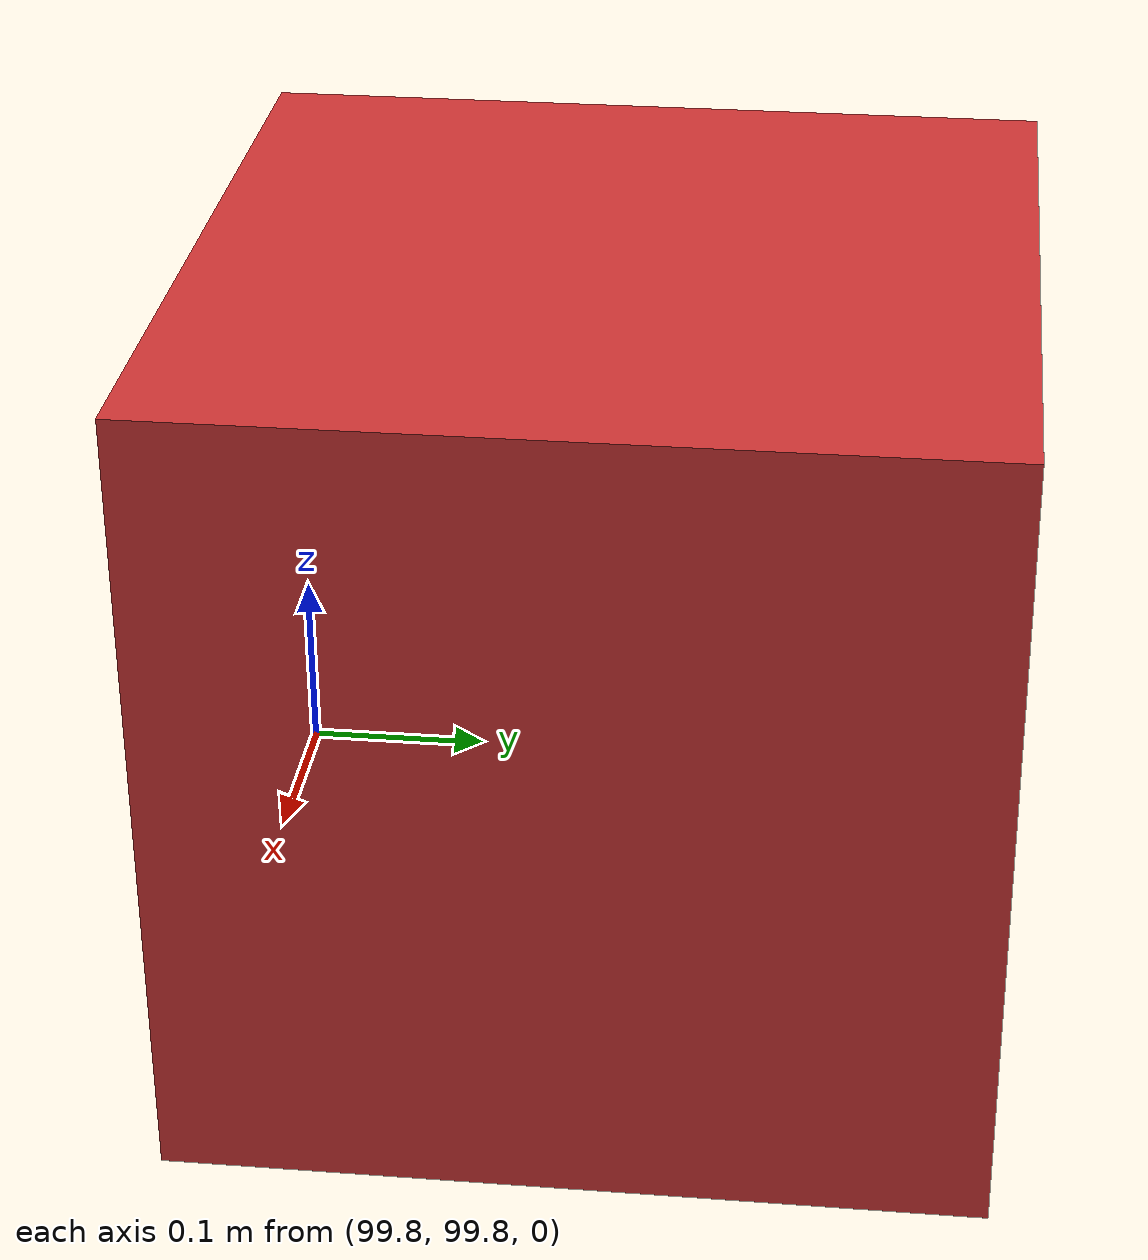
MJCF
<mujoco model="YOUR_MODEL">
  <compiler angle="radian"/>
  <option timestep="0.002"/>

  <worldbody>
    <!-- ... your robot, ground, etc ... -->

    <!-- One mocap box obstacle -->
    <body name="obstacle" mocap="true" pos="100 100 0.2">
      <geom name="obstacle_geom"
            type="box" size="0.20 0.20 0.20"
            contype="4" conaffinity="2"
            friction="1 0.005 0.0001"
            rgba="0.8 0.2 0.2 1"/>
    </body>

  </worldbody>
</mujoco>
